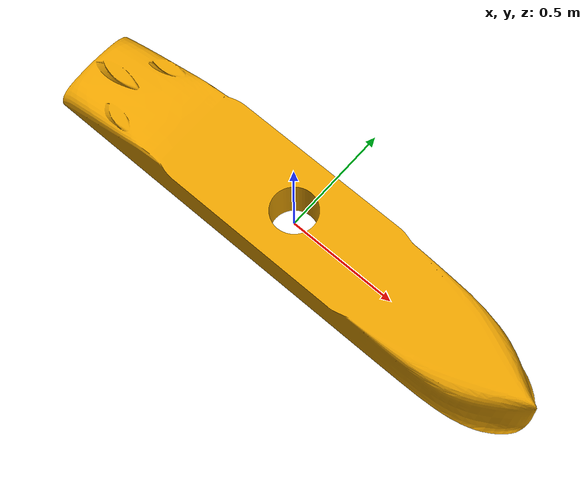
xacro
<?xml version="1.0"?>
<robot xmlns:xacro="http://www.ros.org/wiki/xacro" name="cybership_voyager">

    <link name="base_link">
        <visual>
            <origin
                xyz="0.0 0.0 0.0"
                rpy="0.0 0.0 0.0"
            />
            <geometry>
                <mesh
                    filename="package://cybership_description/meshes/drillship/model.stl"
                    scale="1.0 1.0 1.0"
                />

            </geometry>
        </visual>
    </link>

    <link name="base_link_ned"/>
    <joint name="base_link_to_ned" type="fixed">
        <child link="base_link"/>
        <parent link="base_link_ned"/>
        <origin xyz="0 0 0" rpy="-3.1415926 0 0.0"/>
    </joint>

    <link name="mocap_link"></link>
    <joint name="mocap_link_joint" type="fixed">
        <parent link="base_link_ned" />
        <child link="mocap_link" />
        <origin xyz="0.0 0.0 0.3" rpy="0.0 3.14159265358979 1.5707963267948966" />
    </joint>

    <link name="imu_link"></link>
    <joint name="imu_joint" type="fixed">
        <parent link="base_link" />
        <child link="imu_link" />
        <origin xyz="-0.1 0 0.1" rpy="3.14159265358979 0.0 0.0" />
    </joint>

    <xacro:macro name="thruster" params="thruster_name origin_xyz origin_rpy">
        <link name="${thruster_name}_link" />
        <joint name="${thruster_name}_joint" type="fixed">
            <parent link="base_link_ned" />
            <child link="${thruster_name}_link" />
            <origin xyz="${origin_xyz}" rpy="${origin_rpy}" />
        </joint>
    </xacro:macro>

    <xacro:thruster thruster_name="bow_port_thruster" origin_xyz="0.9344 -0.11 -0.1"
        origin_rpy="0 0 0" />
    <xacro:thruster thruster_name="bow_center_thruster" origin_xyz="1.0678 0.0 -0.1"
        origin_rpy="0 0 0" />
    <xacro:thruster thruster_name="bow_starboard_thruster" origin_xyz="0.9344 0.11 -0.1"
        origin_rpy="0 0 0" />

    <xacro:thruster thruster_name="stern_port_thruster" origin_xyz="-0.9911 -0.1644 -0.1"
        origin_rpy="0 0 0" />
    <xacro:thruster thruster_name="stern_center_thruster" origin_xyz="-1.1644 0.0 -0.1"
        origin_rpy="0 0 0" />
    <xacro:thruster thruster_name="stern_starboard_thruster" origin_xyz="-0.9911 0.1644 -0.1"
        origin_rpy="0 0 0" />

</robot>
